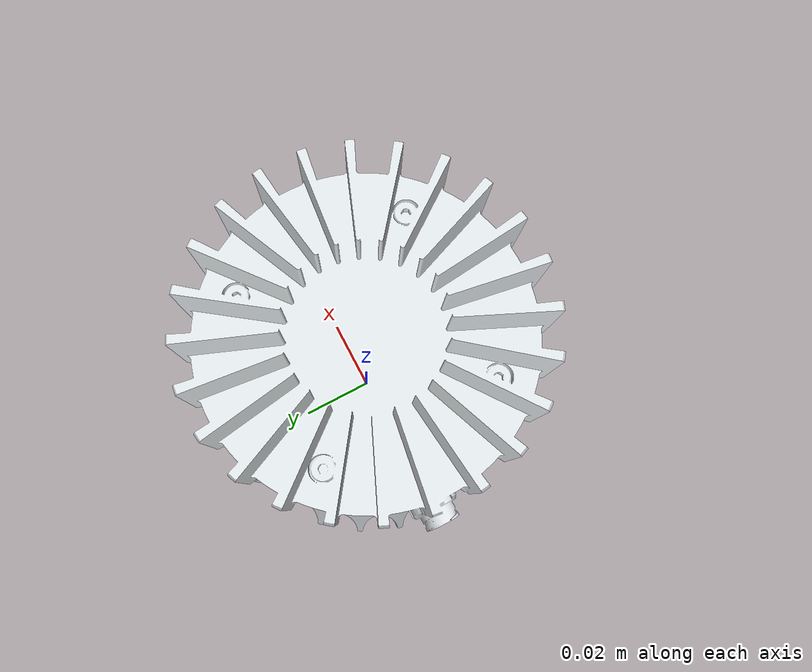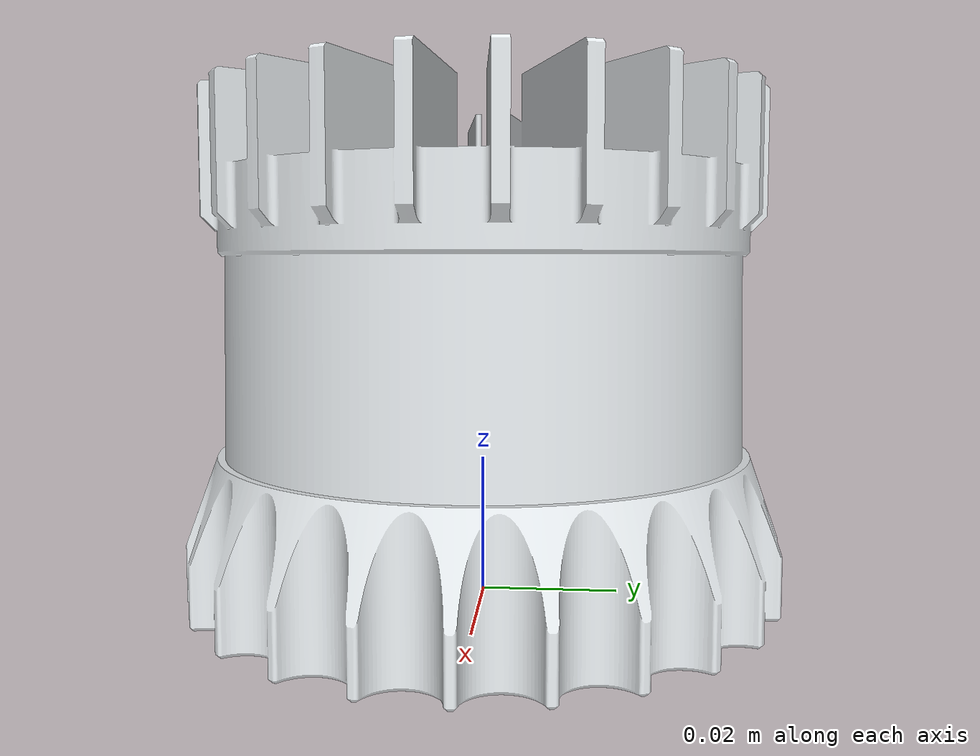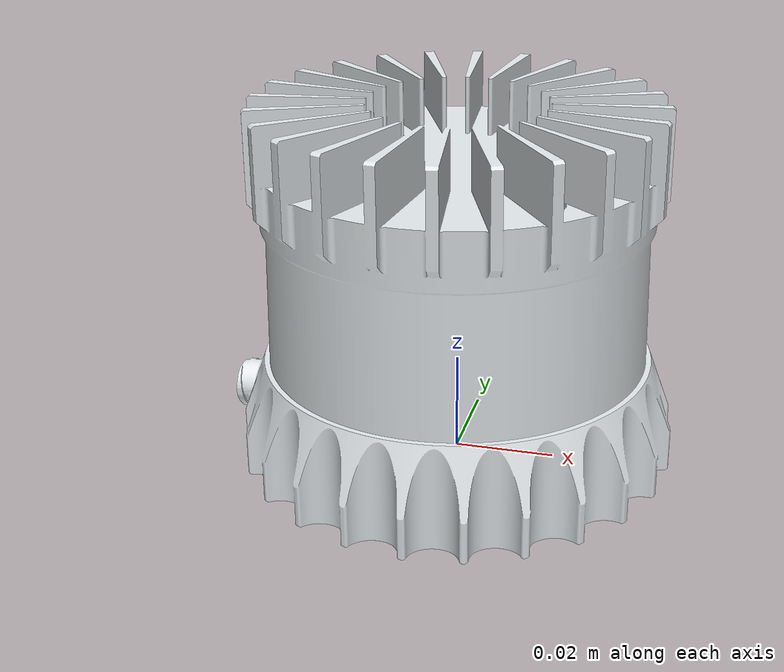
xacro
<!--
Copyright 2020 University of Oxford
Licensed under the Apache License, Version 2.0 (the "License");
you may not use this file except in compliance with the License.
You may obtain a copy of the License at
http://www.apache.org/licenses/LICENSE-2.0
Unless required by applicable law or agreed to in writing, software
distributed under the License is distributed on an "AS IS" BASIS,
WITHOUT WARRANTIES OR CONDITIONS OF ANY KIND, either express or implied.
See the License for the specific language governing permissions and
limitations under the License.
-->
<?xml version="1.0"?>

<robot name="ouster" xmlns:xacro="http://www.ros.org/wiki/xacro">
  <xacro:include filename="$(find ouster_description)/urdf/ouster.urdf.xacro" />
  <xacro:arg name="simulation" default="false" />

  <!-- Dummy link  -->
  <link name="base"/>

  <xacro:os_device parent="base" simulation="$(arg simulation)">
    <origin xyz="0 0 0" rpy="0 0 0" />
  </xacro:os_device>
</robot>

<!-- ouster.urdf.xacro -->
<!-- Ouster OS Lidar Sensor -->
<robot name="os" xmlns:xacro="http://www.ros.org/wiki/xacro">
<xacro:arg name="simulation" default="false" />

<xacro:macro name="os_device" params="parent *origin name:=os1_lidar simulation:=false">
  <joint name="${parent}_to_ouster" type="fixed">
    <xacro:insert_block name="origin"/>
    <parent link="${parent}" />
    <child link="os_sensor" />
  </joint>
  <link name="os_sensor">
    <visual>
      <origin xyz="0 0 0" rpy="${pi/2} 0 ${pi/2}" />
      <geometry>
        <!--cylinder radius="0.04350" length="0.07350" /-->
        <mesh filename="package://ouster_description/urdf/meshes/os1_mesh.dae" />
      </geometry>
    </visual>
    <inertial>
      <!-- CoM taken from CAD assuming constant density and mass 0.479 (best approximation available to real mass) -->
      <origin xyz="-0.03775e-3 -2.161e-7 31.329e-3" rpy="0 0 0" />
      <!-- mass taken from Ouster datasheet -->
      <mass value="0.455" />
      <!-- Inertia tensor from CAD assuming constant density and mass 0.479 (best approximation vailable to real mass) -->
      <inertia ixx="3.545e-4" ixy="6.051e-10" ixz="-3.736e-7" iyy="3.554e-4" iyz="-2.919e-9" izz="3.627e-4" />
    </inertial>
    <collision>
      <origin xyz="0 0 0.03675"/>
      <geometry>
        <cylinder radius="0.04350" length="0.07350" />
      </geometry>
    </collision>
  </link>

  <!-- if simulated sensor, produce extra frames as fixed -->
  <xacro:if value="${simulation}">
    <joint name="ouster_sensor_to_lidar" type="fixed">
      <!-- origin queried from device -->
      <origin xyz="0 0 0.03618" rpy="0 0 ${pi}" />
      <parent link="os_sensor" />
      <child link="os_lidar" />
    </joint>
    <link name="os_lidar" />
    <joint name="ouster_sensor_to_imu" type="fixed">
      <!-- origin queried from device -->
      <origin xyz="0.006253 -0.011775 0.007645" rpy="0 0 0" />
      <parent link="os_sensor" />
      <child link="os_imu" />
    </joint>
    <link name="os_imu" />
  </xacro:if>
</xacro:macro>

</robot>
